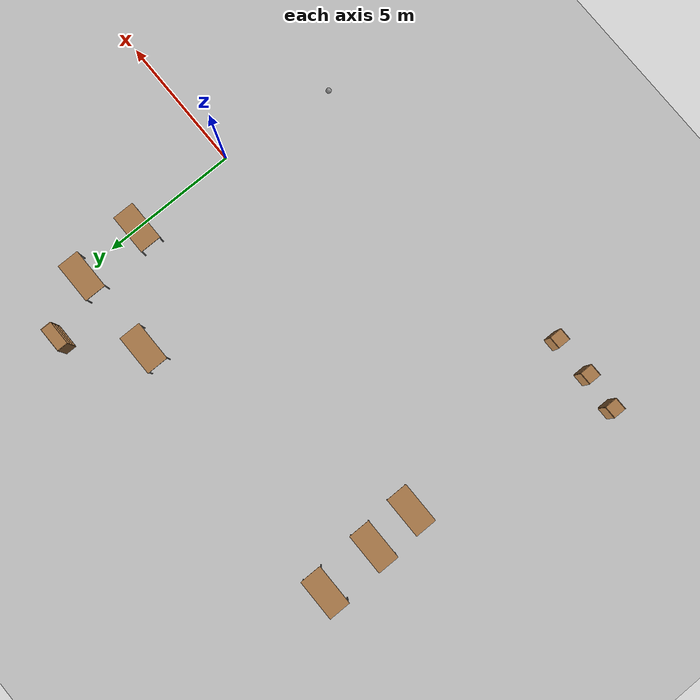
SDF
<sdf version="1.7">
 <world name="default">
  <model name="ground_plane">
   <static>1</static>
   <link name="link">
    <collision name="collision">
     <geometry><plane><normal>0 0 1</normal><size>100 100</size></plane></geometry>
     <surface>
      <contact><collide_bitmask>65535</collide_bitmask></contact>
      <friction><ode><mu>100</mu><mu2>50</mu2></ode></friction>
     </surface>
    </collision>
    <visual name="visual">
     <cast_shadows>0</cast_shadows>
     <geometry><plane><normal>0 0 1</normal><size>100 100</size></plane></geometry>
     <material>
      <script><uri>file://media/materials/scripts/gazebo.material</uri><name>Gazebo/Grey</name></script>
     </material>
    </visual>
   </link>
  </model>
  <model name="ball">
   <link name="link_0">
    <inertial>
     <mass>1</mass>
     <inertia><ixx>0.1</ixx><ixy>0</ixy><ixz>0</ixz><iyy>0.1</iyy><iyz>0</iyz><izz>0.1</izz></inertia>
    </inertial>
    <visual name="visual">
     <geometry><sphere><radius>0.1</radius></sphere></geometry>
     <material>
      <lighting>1</lighting>
      <script><uri>file://media/materials/scripts/gazebo.material</uri><name>Gazebo/Grey</name></script>
      <shader type="pixel"><normal_map>__default__</normal_map></shader>
      <ambient>1 1 1 1</ambient>
      <diffuse>1 1 1 1</diffuse>
      <specular>1 1 1 1</specular>
      <emissive>1 1 1 1</emissive>
     </material>
    </visual>
    <collision name="collision">
     <geometry><sphere><radius>0.1</radius></sphere></geometry>
     <surface>
      <friction>
       <ode><mu>1</mu><mu2>1</mu2><fdir1>0 0 0</fdir1><slip1>0</slip1><slip2>0</slip2></ode>
       <torsional>
        <coefficient>1</coefficient>
        <patch_radius>0</patch_radius>
        <surface_radius>0</surface_radius>
        <use_patch_radius>1</use_patch_radius>
        <ode><slip>0</slip></ode>
       </torsional>
      </friction>
      <bounce><restitution_coefficient>0</restitution_coefficient><threshold>1e+06</threshold></bounce>
      <contact>
       <collide_without_contact>0</collide_without_contact>
       <collide_without_contact_bitmask>1</collide_without_contact_bitmask>
       <collide_bitmask>1</collide_bitmask>
       <ode>
        <soft_cfm>0</soft_cfm>
        <soft_erp>0.2</soft_erp>
        <kp>1e+13</kp>
        <kd>1</kd>
        <max_vel>0.01</max_vel>
        <min_depth>0</min_depth>
       </ode>
       <bullet>
        <split_impulse>1</split_impulse>
        <split_impulse_penetration_threshold>-0.01</split_impulse_penetration_threshold>
        <soft_cfm>0</soft_cfm>
        <soft_erp>0.2</soft_erp>
        <kp>1e+13</kp>
        <kd>1</kd>
       </bullet>
      </contact>
     </surface>
    </collision>
   </link>
   <static>0</static>
   <pose>-0.40279 -4.2561 0.1 0 -0 0</pose>
  </model>
  <model name="bookshelf">
   <static>1</static>
   <link name="link">
    <inertial><mass>1</mass></inertial>
    <collision name="back">
     <pose>0 0.005 0.6 0 -0 0</pose>
     <geometry><box><size>0.9 0.01 1.2</size></box></geometry>
    </collision>
    <visual name="visual1">
     <pose>0 0.005 0.6 0 -0 0</pose>
     <geometry><box><size>0.9 0.01 1.2</size></box></geometry>
     <material>
      <script><uri>file://media/materials/scripts/gazebo.material</uri><name>Gazebo/Wood</name></script>
     </material>
    </visual>
    <collision name="left_side">
     <pose>0.45 -0.195 0.6 0 -0 0</pose>
     <geometry><box><size>0.02 0.4 1.2</size></box></geometry>
    </collision>
    <visual name="visual2">
     <pose>0.45 -0.195 0.6 0 -0 0</pose>
     <geometry><box><size>0.02 0.4 1.2</size></box></geometry>
     <material>
      <script><uri>file://media/materials/scripts/gazebo.material</uri><name>Gazebo/Wood</name></script>
     </material>
    </visual>
    <collision name="right_side">
     <pose>-0.45 -0.195 0.6 0 -0 0</pose>
     <geometry><box><size>0.02 0.4 1.2</size></box></geometry>
    </collision>
    <visual name="visual3">
     <pose>-0.45 -0.195 0.6 0 -0 0</pose>
     <geometry><box><size>0.02 0.4 1.2</size></box></geometry>
     <material>
      <script><uri>file://media/materials/scripts/gazebo.material</uri><name>Gazebo/Wood</name></script>
     </material>
    </visual>
    <collision name="bottom">
     <pose>0 -0.195 0.03 0 -0 0</pose>
     <geometry><box><size>0.88 0.4 0.06</size></box></geometry>
    </collision>
    <visual name="visual4">
     <pose>0 -0.195 0.03 0 -0 0</pose>
     <geometry><box><size>0.88 0.4 0.06</size></box></geometry>
     <material>
      <script><uri>file://media/materials/scripts/gazebo.material</uri><name>Gazebo/Wood</name></script>
     </material>
    </visual>
    <collision name="top">
     <pose>0 -0.195 1.19 0 -0 0</pose>
     <geometry><box><size>0.88 0.4 0.02</size></box></geometry>
    </collision>
    <visual name="visual5">
     <pose>0 -0.195 1.19 0 -0 0</pose>
     <geometry><box><size>0.88 0.4 0.02</size></box></geometry>
     <material>
      <script><uri>file://media/materials/scripts/gazebo.material</uri><name>Gazebo/Wood</name></script>
     </material>
    </visual>
    <collision name="low_shelf">
     <pose>0 -0.195 0.43 0 -0 0</pose>
     <geometry><box><size>0.88 0.4 0.02</size></box></geometry>
    </collision>
    <visual name="visual6">
     <pose>0 -0.195 0.43 0 -0 0</pose>
     <geometry><box><size>0.88 0.4 0.02</size></box></geometry>
     <material>
      <script><uri>file://media/materials/scripts/gazebo.material</uri><name>Gazebo/Wood</name></script>
     </material>
    </visual>
    <collision name="high_shelf">
     <pose>0 -0.195 0.8 0 -0 0</pose>
     <geometry><box><size>0.88 0.4 0.02</size></box></geometry>
    </collision>
    <visual name="visual7">
     <pose>0 -0.195 0.8 0 -0 0</pose>
     <geometry><box><size>0.88 0.4 0.02</size></box></geometry>
     <material>
      <script><uri>file://media/materials/scripts/gazebo.material</uri><name>Gazebo/Wood</name></script>
     </material>
    </visual>
   </link>
   <pose>-1.39473 8.36492 0 0 -0 0</pose>
  </model>
  <model name="table">
   <static>1</static>
   <link name="link">
    <collision name="surface">
     <pose>0 0 1 0 -0 0</pose>
     <geometry><box><size>1.5 0.8 0.03</size></box></geometry>
     <surface><friction><ode><mu>0.6</mu><mu2>0.6</mu2></ode></friction></surface>
    </collision>
    <visual name="visual1">
     <pose>0 0 1 0 -0 0</pose>
     <geometry><box><size>1.5 0.8 0.03</size></box></geometry>
     <material>
      <script><uri>file://media/materials/scripts/gazebo.material</uri><name>Gazebo/Wood</name></script>
     </material>
    </visual>
    <collision name="front_left_leg">
     <pose>0.68 0.38 0.5 0 -0 0</pose>
     <geometry><cylinder><radius>0.02</radius><length>1</length></cylinder></geometry>
    </collision>
    <visual name="front_left_leg">
     <pose>0.68 0.38 0.5 0 -0 0</pose>
     <geometry><cylinder><radius>0.02</radius><length>1</length></cylinder></geometry>
     <material>
      <script><uri>file://media/materials/scripts/gazebo.material</uri><name>Gazebo/Grey</name></script>
     </material>
    </visual>
    <collision name="front_right_leg">
     <pose>0.68 -0.38 0.5 0 -0 0</pose>
     <geometry><cylinder><radius>0.02</radius><length>1</length></cylinder></geometry>
    </collision>
    <visual name="front_right_leg">
     <pose>0.68 -0.38 0.5 0 -0 0</pose>
     <geometry><cylinder><radius>0.02</radius><length>1</length></cylinder></geometry>
     <material>
      <script><uri>file://media/materials/scripts/gazebo.material</uri><name>Gazebo/Grey</name></script>
     </material>
    </visual>
    <collision name="back_right_leg">
     <pose>-0.68 -0.38 0.5 0 -0 0</pose>
     <geometry><cylinder><radius>0.02</radius><length>1</length></cylinder></geometry>
    </collision>
    <visual name="back_right_leg">
     <pose>-0.68 -0.38 0.5 0 -0 0</pose>
     <geometry><cylinder><radius>0.02</radius><length>1</length></cylinder></geometry>
     <material>
      <script><uri>file://media/materials/scripts/gazebo.material</uri><name>Gazebo/Grey</name></script>
     </material>
    </visual>
    <collision name="back_left_leg">
     <pose>-0.68 0.38 0.5 0 -0 0</pose>
     <geometry><cylinder><radius>0.02</radius><length>1</length></cylinder></geometry>
    </collision>
    <visual name="back_left_leg">
     <pose>-0.68 0.38 0.5 0 -0 0</pose>
     <geometry><cylinder><radius>0.02</radius><length>1</length></cylinder></geometry>
     <material>
      <script><uri>file://media/materials/scripts/gazebo.material</uri><name>Gazebo/Grey</name></script>
     </material>
    </visual>
   </link>
   <pose>-13.3637 6.5418 0 0 -0 0</pose>
  </model>
  <model name="table_0">
   <static>1</static>
   <link name="link">
    <collision name="surface">
     <pose>0 0 1 0 -0 0</pose>
     <geometry><box><size>1.5 0.8 0.03</size></box></geometry>
     <surface><friction><ode><mu>0.6</mu><mu2>0.6</mu2></ode></friction></surface>
    </collision>
    <visual name="visual1">
     <pose>0 0 1 0 -0 0</pose>
     <geometry><box><size>1.5 0.8 0.03</size></box></geometry>
     <material>
      <script><uri>file://media/materials/scripts/gazebo.material</uri><name>Gazebo/Wood</name></script>
     </material>
    </visual>
    <collision name="front_left_leg">
     <pose>0.68 0.38 0.5 0 -0 0</pose>
     <geometry><cylinder><radius>0.02</radius><length>1</length></cylinder></geometry>
    </collision>
    <visual name="front_left_leg">
     <pose>0.68 0.38 0.5 0 -0 0</pose>
     <geometry><cylinder><radius>0.02</radius><length>1</length></cylinder></geometry>
     <material>
      <script><uri>file://media/materials/scripts/gazebo.material</uri><name>Gazebo/Grey</name></script>
     </material>
    </visual>
    <collision name="front_right_leg">
     <pose>0.68 -0.38 0.5 0 -0 0</pose>
     <geometry><cylinder><radius>0.02</radius><length>1</length></cylinder></geometry>
    </collision>
    <visual name="front_right_leg">
     <pose>0.68 -0.38 0.5 0 -0 0</pose>
     <geometry><cylinder><radius>0.02</radius><length>1</length></cylinder></geometry>
     <material>
      <script><uri>file://media/materials/scripts/gazebo.material</uri><name>Gazebo/Grey</name></script>
     </material>
    </visual>
    <collision name="back_right_leg">
     <pose>-0.68 -0.38 0.5 0 -0 0</pose>
     <geometry><cylinder><radius>0.02</radius><length>1</length></cylinder></geometry>
    </collision>
    <visual name="back_right_leg">
     <pose>-0.68 -0.38 0.5 0 -0 0</pose>
     <geometry><cylinder><radius>0.02</radius><length>1</length></cylinder></geometry>
     <material>
      <script><uri>file://media/materials/scripts/gazebo.material</uri><name>Gazebo/Grey</name></script>
     </material>
    </visual>
    <collision name="back_left_leg">
     <pose>-0.68 0.38 0.5 0 -0 0</pose>
     <geometry><cylinder><radius>0.02</radius><length>1</length></cylinder></geometry>
    </collision>
    <visual name="back_left_leg">
     <pose>-0.68 0.38 0.5 0 -0 0</pose>
     <geometry><cylinder><radius>0.02</radius><length>1</length></cylinder></geometry>
     <material>
      <script><uri>file://media/materials/scripts/gazebo.material</uri><name>Gazebo/Grey</name></script>
     </material>
    </visual>
   </link>
   <pose>-13.2475 4.41962 0 0 -0 0</pose>
  </model>
  <model name="table_1">
   <static>1</static>
   <link name="link">
    <collision name="surface">
     <pose>0 0 1 0 -0 0</pose>
     <geometry><box><size>1.5 0.8 0.03</size></box></geometry>
     <surface><friction><ode><mu>0.6</mu><mu2>0.6</mu2></ode></friction></surface>
    </collision>
    <visual name="visual1">
     <pose>0 0 1 0 -0 0</pose>
     <geometry><box><size>1.5 0.8 0.03</size></box></geometry>
     <material>
      <script><uri>file://media/materials/scripts/gazebo.material</uri><name>Gazebo/Wood</name></script>
     </material>
    </visual>
    <collision name="front_left_leg">
     <pose>0.68 0.38 0.5 0 -0 0</pose>
     <geometry><cylinder><radius>0.02</radius><length>1</length></cylinder></geometry>
    </collision>
    <visual name="front_left_leg">
     <pose>0.68 0.38 0.5 0 -0 0</pose>
     <geometry><cylinder><radius>0.02</radius><length>1</length></cylinder></geometry>
     <material>
      <script><uri>file://media/materials/scripts/gazebo.material</uri><name>Gazebo/Grey</name></script>
     </material>
    </visual>
    <collision name="front_right_leg">
     <pose>0.68 -0.38 0.5 0 -0 0</pose>
     <geometry><cylinder><radius>0.02</radius><length>1</length></cylinder></geometry>
    </collision>
    <visual name="front_right_leg">
     <pose>0.68 -0.38 0.5 0 -0 0</pose>
     <geometry><cylinder><radius>0.02</radius><length>1</length></cylinder></geometry>
     <material>
      <script><uri>file://media/materials/scripts/gazebo.material</uri><name>Gazebo/Grey</name></script>
     </material>
    </visual>
    <collision name="back_right_leg">
     <pose>-0.68 -0.38 0.5 0 -0 0</pose>
     <geometry><cylinder><radius>0.02</radius><length>1</length></cylinder></geometry>
    </collision>
    <visual name="back_right_leg">
     <pose>-0.68 -0.38 0.5 0 -0 0</pose>
     <geometry><cylinder><radius>0.02</radius><length>1</length></cylinder></geometry>
     <material>
      <script><uri>file://media/materials/scripts/gazebo.material</uri><name>Gazebo/Grey</name></script>
     </material>
    </visual>
    <collision name="back_left_leg">
     <pose>-0.68 0.38 0.5 0 -0 0</pose>
     <geometry><cylinder><radius>0.02</radius><length>1</length></cylinder></geometry>
    </collision>
    <visual name="back_left_leg">
     <pose>-0.68 0.38 0.5 0 -0 0</pose>
     <geometry><cylinder><radius>0.02</radius><length>1</length></cylinder></geometry>
     <material>
      <script><uri>file://media/materials/scripts/gazebo.material</uri><name>Gazebo/Grey</name></script>
     </material>
    </visual>
   </link>
   <pose>-13.1222 2.74764 0 0 -0 0</pose>
  </model>
  <model name="table_2">
   <static>1</static>
   <link name="link">
    <collision name="surface">
     <pose>0 0 1 0 -0 0</pose>
     <geometry><box><size>1.5 0.8 0.03</size></box></geometry>
     <surface><friction><ode><mu>0.6</mu><mu2>0.6</mu2></ode></friction></surface>
    </collision>
    <visual name="visual1">
     <pose>0 0 1 0 -0 0</pose>
     <geometry><box><size>1.5 0.8 0.03</size></box></geometry>
     <material>
      <script><uri>file://media/materials/scripts/gazebo.material</uri><name>Gazebo/Wood</name></script>
     </material>
    </visual>
    <collision name="front_left_leg">
     <pose>0.68 0.38 0.5 0 -0 0</pose>
     <geometry><cylinder><radius>0.02</radius><length>1</length></cylinder></geometry>
    </collision>
    <visual name="front_left_leg">
     <pose>0.68 0.38 0.5 0 -0 0</pose>
     <geometry><cylinder><radius>0.02</radius><length>1</length></cylinder></geometry>
     <material>
      <script><uri>file://media/materials/scripts/gazebo.material</uri><name>Gazebo/Grey</name></script>
     </material>
    </visual>
    <collision name="front_right_leg">
     <pose>0.68 -0.38 0.5 0 -0 0</pose>
     <geometry><cylinder><radius>0.02</radius><length>1</length></cylinder></geometry>
    </collision>
    <visual name="front_right_leg">
     <pose>0.68 -0.38 0.5 0 -0 0</pose>
     <geometry><cylinder><radius>0.02</radius><length>1</length></cylinder></geometry>
     <material>
      <script><uri>file://media/materials/scripts/gazebo.material</uri><name>Gazebo/Grey</name></script>
     </material>
    </visual>
    <collision name="back_right_leg">
     <pose>-0.68 -0.38 0.5 0 -0 0</pose>
     <geometry><cylinder><radius>0.02</radius><length>1</length></cylinder></geometry>
    </collision>
    <visual name="back_right_leg">
     <pose>-0.68 -0.38 0.5 0 -0 0</pose>
     <geometry><cylinder><radius>0.02</radius><length>1</length></cylinder></geometry>
     <material>
      <script><uri>file://media/materials/scripts/gazebo.material</uri><name>Gazebo/Grey</name></script>
     </material>
    </visual>
    <collision name="back_left_leg">
     <pose>-0.68 0.38 0.5 0 -0 0</pose>
     <geometry><cylinder><radius>0.02</radius><length>1</length></cylinder></geometry>
    </collision>
    <visual name="back_left_leg">
     <pose>-0.68 0.38 0.5 0 -0 0</pose>
     <geometry><cylinder><radius>0.02</radius><length>1</length></cylinder></geometry>
     <material>
      <script><uri>file://media/materials/scripts/gazebo.material</uri><name>Gazebo/Grey</name></script>
     </material>
    </visual>
   </link>
   <pose>-3.52259 6.17207 0 0 -0 0</pose>
  </model>
  <model name="cabinet">
   <static>1</static>
   <link name="cabinet_bottom_plate">
    <inertial>
     <pose>0 0 -1 0 -0 0</pose>
     <inertia><ixx>2.05</ixx><ixy>0</ixy><ixz>0</ixz><iyy>2.05</iyy><iyz>0</iyz><izz>2.05</izz></inertia>
     <mass>25</mass>
    </inertial>
    <collision name="cabinet_bottom_plate_geom">
     <pose>0 0 0.01 0 -0 0</pose>
     <geometry><box><size>0.45 0.45 0.02</size></box></geometry>
    </collision>
    <visual name="cabinet_bottom_plate_geom_visual">
     <pose>0 0 0.01 0 -0 0</pose>
     <geometry><box><size>0.45 0.45 0.02</size></box></geometry>
     <material>
      <script><uri>file://media/materials/scripts/gazebo.material</uri><name>Gazebo/Wood</name></script>
     </material>
    </visual>
    <collision name="cabinet_bottom_plate_geom_cabinet_back_plate">
     <pose>0.235 0 0.51 0 -0 0</pose>
     <geometry><box><size>0.02 0.45 1.02</size></box></geometry>
    </collision>
    <visual name="cabinet_bottom_plate_geom_cabinet_back_plate_visual">
     <pose>0.235 0 0.51 0 -0 0</pose>
     <geometry><box><size>0.02 0.45 1.02</size></box></geometry>
     <material>
      <script><uri>file://media/materials/scripts/gazebo.material</uri><name>Gazebo/Wood</name></script>
     </material>
    </visual>
    <collision name="cabinet_bottom_plate_geom_cabinet_left_plate">
     <pose>0 0.235 0.51 0 -0 0</pose>
     <geometry><box><size>0.45 0.02 1.02</size></box></geometry>
    </collision>
    <visual name="cabinet_bottom_plate_geom_cabinet_left_plate_visual">
     <pose>0 0.235 0.51 0 -0 0</pose>
     <geometry><box><size>0.45 0.02 1.02</size></box></geometry>
     <material>
      <script><uri>file://media/materials/scripts/gazebo.material</uri><name>Gazebo/Wood</name></script>
     </material>
    </visual>
    <collision name="cabinet_bottom_plate_geom_cabinet_middle_plate">
     <pose>0 0 0.51 0 -0 0</pose>
     <geometry><box><size>0.45 0.45 0.02</size></box></geometry>
    </collision>
    <visual name="cabinet_bottom_plate_geom_cabinet_middle_plate_visual">
     <pose>0 0 0.51 0 -0 0</pose>
     <geometry><box><size>0.45 0.45 0.02</size></box></geometry>
     <material>
      <script><uri>file://media/materials/scripts/gazebo.material</uri><name>Gazebo/Wood</name></script>
     </material>
    </visual>
    <collision name="cabinet_bottom_plate_geom_cabinet_right_plate">
     <pose>0 -0.235 0.51 0 -0 0</pose>
     <geometry><box><size>0.45 0.02 1.02</size></box></geometry>
    </collision>
    <visual name="cabinet_bottom_plate_geom_cabinet_right_plate_visual">
     <pose>0 -0.235 0.51 0 -0 0</pose>
     <geometry><box><size>0.45 0.02 1.02</size></box></geometry>
     <material>
      <script><uri>file://media/materials/scripts/gazebo.material</uri><name>Gazebo/Wood</name></script>
     </material>
    </visual>
    <collision name="cabinet_bottom_plate_geom_cabinet_top_plate">
     <pose>0 0 1.01 0 -0 0</pose>
     <geometry><box><size>0.45 0.45 0.02</size></box></geometry>
    </collision>
    <visual name="cabinet_bottom_plate_geom_cabinet_top_plate_visual">
     <pose>0 0 1.01 0 -0 0</pose>
     <geometry><box><size>0.45 0.45 0.02</size></box></geometry>
     <material>
      <script><uri>file://media/materials/scripts/gazebo.material</uri><name>Gazebo/Wood</name></script>
     </material>
    </visual>
   </link>
   <pose>-14.8393 -4.49712 0 0 -0 0</pose>
  </model>
  <model name="cabinet_0">
   <static>1</static>
   <link name="cabinet_bottom_plate">
    <inertial>
     <pose>0 0 -1 0 -0 0</pose>
     <inertia><ixx>2.05</ixx><ixy>0</ixy><ixz>0</ixz><iyy>2.05</iyy><iyz>0</iyz><izz>2.05</izz></inertia>
     <mass>25</mass>
    </inertial>
    <collision name="cabinet_bottom_plate_geom">
     <pose>0 0 0.01 0 -0 0</pose>
     <geometry><box><size>0.45 0.45 0.02</size></box></geometry>
    </collision>
    <visual name="cabinet_bottom_plate_geom_visual">
     <pose>0 0 0.01 0 -0 0</pose>
     <geometry><box><size>0.45 0.45 0.02</size></box></geometry>
     <material>
      <script><uri>file://media/materials/scripts/gazebo.material</uri><name>Gazebo/Wood</name></script>
     </material>
    </visual>
    <collision name="cabinet_bottom_plate_geom_cabinet_back_plate">
     <pose>0.235 0 0.51 0 -0 0</pose>
     <geometry><box><size>0.02 0.45 1.02</size></box></geometry>
    </collision>
    <visual name="cabinet_bottom_plate_geom_cabinet_back_plate_visual">
     <pose>0.235 0 0.51 0 -0 0</pose>
     <geometry><box><size>0.02 0.45 1.02</size></box></geometry>
     <material>
      <script><uri>file://media/materials/scripts/gazebo.material</uri><name>Gazebo/Wood</name></script>
     </material>
    </visual>
    <collision name="cabinet_bottom_plate_geom_cabinet_left_plate">
     <pose>0 0.235 0.51 0 -0 0</pose>
     <geometry><box><size>0.45 0.02 1.02</size></box></geometry>
    </collision>
    <visual name="cabinet_bottom_plate_geom_cabinet_left_plate_visual">
     <pose>0 0.235 0.51 0 -0 0</pose>
     <geometry><box><size>0.45 0.02 1.02</size></box></geometry>
     <material>
      <script><uri>file://media/materials/scripts/gazebo.material</uri><name>Gazebo/Wood</name></script>
     </material>
    </visual>
    <collision name="cabinet_bottom_plate_geom_cabinet_middle_plate">
     <pose>0 0 0.51 0 -0 0</pose>
     <geometry><box><size>0.45 0.45 0.02</size></box></geometry>
    </collision>
    <visual name="cabinet_bottom_plate_geom_cabinet_middle_plate_visual">
     <pose>0 0 0.51 0 -0 0</pose>
     <geometry><box><size>0.45 0.45 0.02</size></box></geometry>
     <material>
      <script><uri>file://media/materials/scripts/gazebo.material</uri><name>Gazebo/Wood</name></script>
     </material>
    </visual>
    <collision name="cabinet_bottom_plate_geom_cabinet_right_plate">
     <pose>0 -0.235 0.51 0 -0 0</pose>
     <geometry><box><size>0.45 0.02 1.02</size></box></geometry>
    </collision>
    <visual name="cabinet_bottom_plate_geom_cabinet_right_plate_visual">
     <pose>0 -0.235 0.51 0 -0 0</pose>
     <geometry><box><size>0.45 0.02 1.02</size></box></geometry>
     <material>
      <script><uri>file://media/materials/scripts/gazebo.material</uri><name>Gazebo/Wood</name></script>
     </material>
    </visual>
    <collision name="cabinet_bottom_plate_geom_cabinet_top_plate">
     <pose>0 0 1.01 0 -0 0</pose>
     <geometry><box><size>0.45 0.45 0.02</size></box></geometry>
    </collision>
    <visual name="cabinet_bottom_plate_geom_cabinet_top_plate_visual">
     <pose>0 0 1.01 0 -0 0</pose>
     <geometry><box><size>0.45 0.45 0.02</size></box></geometry>
     <material>
      <script><uri>file://media/materials/scripts/gazebo.material</uri><name>Gazebo/Wood</name></script>
     </material>
    </visual>
   </link>
   <pose>-13.49 -4.59852 0 0 -0 0</pose>
  </model>
  <model name="cabinet_1">
   <static>1</static>
   <link name="cabinet_bottom_plate">
    <inertial>
     <pose>0 0 -1 0 -0 0</pose>
     <inertia><ixx>2.05</ixx><ixy>0</ixy><ixz>0</ixz><iyy>2.05</iyy><iyz>0</iyz><izz>2.05</izz></inertia>
     <mass>25</mass>
    </inertial>
    <collision name="cabinet_bottom_plate_geom">
     <pose>0 0 0.01 0 -0 0</pose>
     <geometry><box><size>0.45 0.45 0.02</size></box></geometry>
    </collision>
    <visual name="cabinet_bottom_plate_geom_visual">
     <pose>0 0 0.01 0 -0 0</pose>
     <geometry><box><size>0.45 0.45 0.02</size></box></geometry>
     <material>
      <script><uri>file://media/materials/scripts/gazebo.material</uri><name>Gazebo/Wood</name></script>
     </material>
    </visual>
    <collision name="cabinet_bottom_plate_geom_cabinet_back_plate">
     <pose>0.235 0 0.51 0 -0 0</pose>
     <geometry><box><size>0.02 0.45 1.02</size></box></geometry>
    </collision>
    <visual name="cabinet_bottom_plate_geom_cabinet_back_plate_visual">
     <pose>0.235 0 0.51 0 -0 0</pose>
     <geometry><box><size>0.02 0.45 1.02</size></box></geometry>
     <material>
      <script><uri>file://media/materials/scripts/gazebo.material</uri><name>Gazebo/Wood</name></script>
     </material>
    </visual>
    <collision name="cabinet_bottom_plate_geom_cabinet_left_plate">
     <pose>0 0.235 0.51 0 -0 0</pose>
     <geometry><box><size>0.45 0.02 1.02</size></box></geometry>
    </collision>
    <visual name="cabinet_bottom_plate_geom_cabinet_left_plate_visual">
     <pose>0 0.235 0.51 0 -0 0</pose>
     <geometry><box><size>0.45 0.02 1.02</size></box></geometry>
     <material>
      <script><uri>file://media/materials/scripts/gazebo.material</uri><name>Gazebo/Wood</name></script>
     </material>
    </visual>
    <collision name="cabinet_bottom_plate_geom_cabinet_middle_plate">
     <pose>0 0 0.51 0 -0 0</pose>
     <geometry><box><size>0.45 0.45 0.02</size></box></geometry>
    </collision>
    <visual name="cabinet_bottom_plate_geom_cabinet_middle_plate_visual">
     <pose>0 0 0.51 0 -0 0</pose>
     <geometry><box><size>0.45 0.45 0.02</size></box></geometry>
     <material>
      <script><uri>file://media/materials/scripts/gazebo.material</uri><name>Gazebo/Wood</name></script>
     </material>
    </visual>
    <collision name="cabinet_bottom_plate_geom_cabinet_right_plate">
     <pose>0 -0.235 0.51 0 -0 0</pose>
     <geometry><box><size>0.45 0.02 1.02</size></box></geometry>
    </collision>
    <visual name="cabinet_bottom_plate_geom_cabinet_right_plate_visual">
     <pose>0 -0.235 0.51 0 -0 0</pose>
     <geometry><box><size>0.45 0.02 1.02</size></box></geometry>
     <material>
      <script><uri>file://media/materials/scripts/gazebo.material</uri><name>Gazebo/Wood</name></script>
     </material>
    </visual>
    <collision name="cabinet_bottom_plate_geom_cabinet_top_plate">
     <pose>0 0 1.01 0 -0 0</pose>
     <geometry><box><size>0.45 0.45 0.02</size></box></geometry>
    </collision>
    <visual name="cabinet_bottom_plate_geom_cabinet_top_plate_visual">
     <pose>0 0 1.01 0 -0 0</pose>
     <geometry><box><size>0.45 0.45 0.02</size></box></geometry>
     <material>
      <script><uri>file://media/materials/scripts/gazebo.material</uri><name>Gazebo/Wood</name></script>
     </material>
    </visual>
   </link>
   <pose>-11.9647 -4.59698 0 0 -0 0</pose>
  </model>
  <model name="table_3">
   <static>1</static>
   <link name="link">
    <collision name="surface">
     <pose>0 0 1 0 -0 0</pose>
     <geometry><box><size>1.5 0.8 0.03</size></box></geometry>
     <surface><friction><ode><mu>0.6</mu><mu2>0.6</mu2></ode></friction></surface>
    </collision>
    <visual name="visual1">
     <pose>0 0 1 0 -0 0</pose>
     <geometry><box><size>1.5 0.8 0.03</size></box></geometry>
     <material>
      <script><uri>file://media/materials/scripts/gazebo.material</uri><name>Gazebo/Wood</name></script>
     </material>
    </visual>
    <collision name="front_left_leg">
     <pose>0.68 0.38 0.5 0 -0 0</pose>
     <geometry><cylinder><radius>0.02</radius><length>1</length></cylinder></geometry>
    </collision>
    <visual name="front_left_leg">
     <pose>0.68 0.38 0.5 0 -0 0</pose>
     <geometry><cylinder><radius>0.02</radius><length>1</length></cylinder></geometry>
     <material>
      <script><uri>file://media/materials/scripts/gazebo.material</uri><name>Gazebo/Grey</name></script>
     </material>
    </visual>
    <collision name="front_right_leg">
     <pose>0.68 -0.38 0.5 0 -0 0</pose>
     <geometry><cylinder><radius>0.02</radius><length>1</length></cylinder></geometry>
    </collision>
    <visual name="front_right_leg">
     <pose>0.68 -0.38 0.5 0 -0 0</pose>
     <geometry><cylinder><radius>0.02</radius><length>1</length></cylinder></geometry>
     <material>
      <script><uri>file://media/materials/scripts/gazebo.material</uri><name>Gazebo/Grey</name></script>
     </material>
    </visual>
    <collision name="back_right_leg">
     <pose>-0.68 -0.38 0.5 0 -0 0</pose>
     <geometry><cylinder><radius>0.02</radius><length>1</length></cylinder></geometry>
    </collision>
    <visual name="back_right_leg">
     <pose>-0.68 -0.38 0.5 0 -0 0</pose>
     <geometry><cylinder><radius>0.02</radius><length>1</length></cylinder></geometry>
     <material>
      <script><uri>file://media/materials/scripts/gazebo.material</uri><name>Gazebo/Grey</name></script>
     </material>
    </visual>
    <collision name="back_left_leg">
     <pose>-0.68 0.38 0.5 0 -0 0</pose>
     <geometry><cylinder><radius>0.02</radius><length>1</length></cylinder></geometry>
    </collision>
    <visual name="back_left_leg">
     <pose>-0.68 0.38 0.5 0 -0 0</pose>
     <geometry><cylinder><radius>0.02</radius><length>1</length></cylinder></geometry>
     <material>
      <script><uri>file://media/materials/scripts/gazebo.material</uri><name>Gazebo/Grey</name></script>
     </material>
    </visual>
   </link>
   <pose>-0.33751 6.27055 0 0 -0 0</pose>
  </model>
  <model name="table_4">
   <static>1</static>
   <link name="link">
    <collision name="surface">
     <pose>0 0 1 0 -0 0</pose>
     <geometry><box><size>1.5 0.8 0.03</size></box></geometry>
     <surface><friction><ode><mu>0.6</mu><mu2>0.6</mu2></ode></friction></surface>
    </collision>
    <visual name="visual1">
     <pose>0 0 1 0 -0 0</pose>
     <geometry><box><size>1.5 0.8 0.03</size></box></geometry>
     <material>
      <script><uri>file://media/materials/scripts/gazebo.material</uri><name>Gazebo/Wood</name></script>
     </material>
    </visual>
    <collision name="front_left_leg">
     <pose>0.68 0.38 0.5 0 -0 0</pose>
     <geometry><cylinder><radius>0.02</radius><length>1</length></cylinder></geometry>
    </collision>
    <visual name="front_left_leg">
     <pose>0.68 0.38 0.5 0 -0 0</pose>
     <geometry><cylinder><radius>0.02</radius><length>1</length></cylinder></geometry>
     <material>
      <script><uri>file://media/materials/scripts/gazebo.material</uri><name>Gazebo/Grey</name></script>
     </material>
    </visual>
    <collision name="front_right_leg">
     <pose>0.68 -0.38 0.5 0 -0 0</pose>
     <geometry><cylinder><radius>0.02</radius><length>1</length></cylinder></geometry>
    </collision>
    <visual name="front_right_leg">
     <pose>0.68 -0.38 0.5 0 -0 0</pose>
     <geometry><cylinder><radius>0.02</radius><length>1</length></cylinder></geometry>
     <material>
      <script><uri>file://media/materials/scripts/gazebo.material</uri><name>Gazebo/Grey</name></script>
     </material>
    </visual>
    <collision name="back_right_leg">
     <pose>-0.68 -0.38 0.5 0 -0 0</pose>
     <geometry><cylinder><radius>0.02</radius><length>1</length></cylinder></geometry>
    </collision>
    <visual name="back_right_leg">
     <pose>-0.68 -0.38 0.5 0 -0 0</pose>
     <geometry><cylinder><radius>0.02</radius><length>1</length></cylinder></geometry>
     <material>
      <script><uri>file://media/materials/scripts/gazebo.material</uri><name>Gazebo/Grey</name></script>
     </material>
    </visual>
    <collision name="back_left_leg">
     <pose>-0.68 0.38 0.5 0 -0 0</pose>
     <geometry><cylinder><radius>0.02</radius><length>1</length></cylinder></geometry>
    </collision>
    <visual name="back_left_leg">
     <pose>-0.68 0.38 0.5 0 -0 0</pose>
     <geometry><cylinder><radius>0.02</radius><length>1</length></cylinder></geometry>
     <material>
      <script><uri>file://media/materials/scripts/gazebo.material</uri><name>Gazebo/Grey</name></script>
     </material>
    </visual>
   </link>
   <pose>-0.216827 3.84678 0 0 -0 0</pose>
  </model>
 </world>
</sdf>
